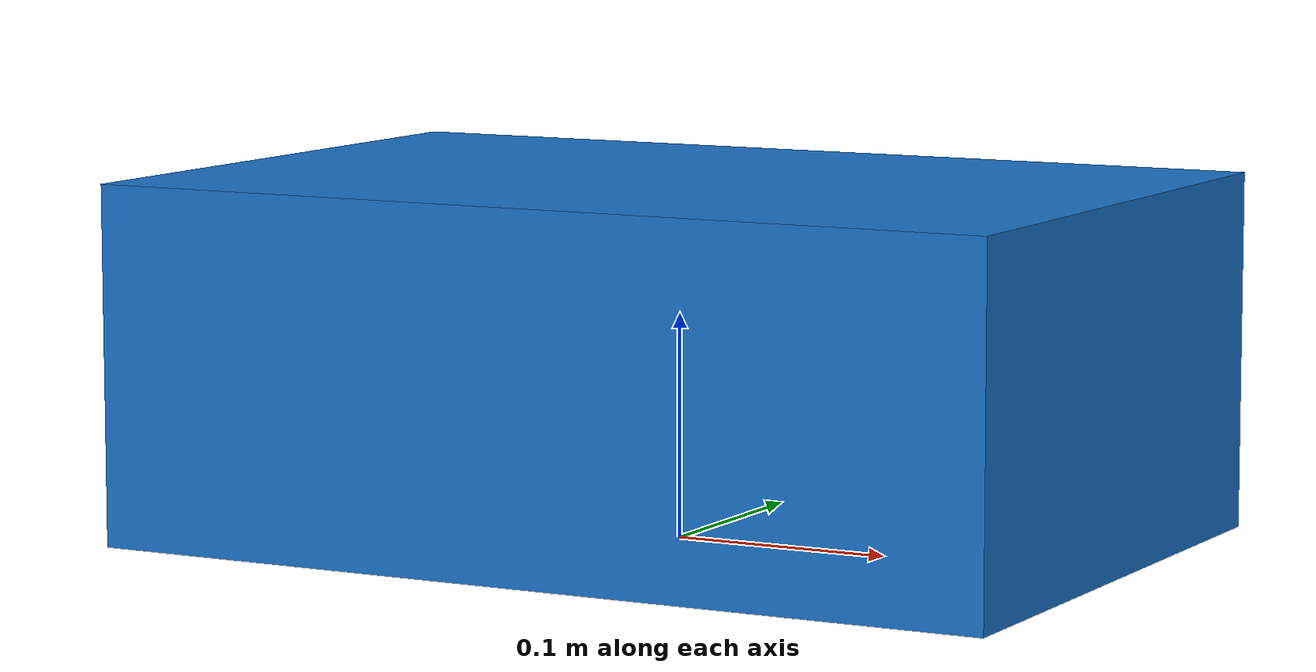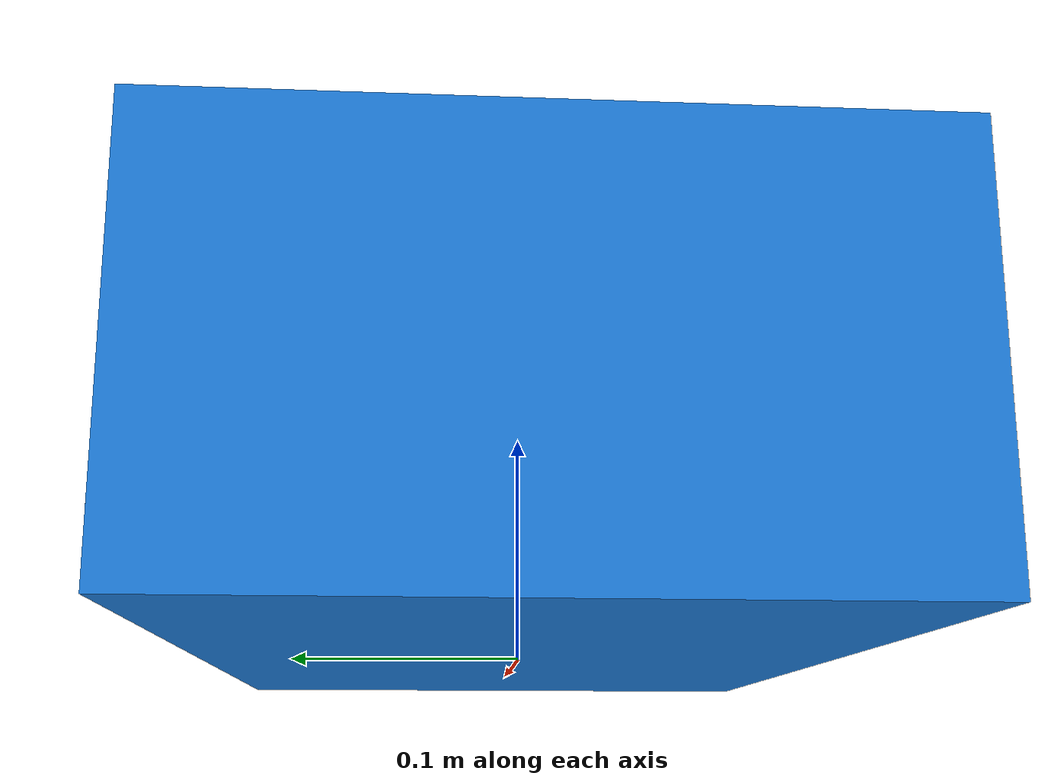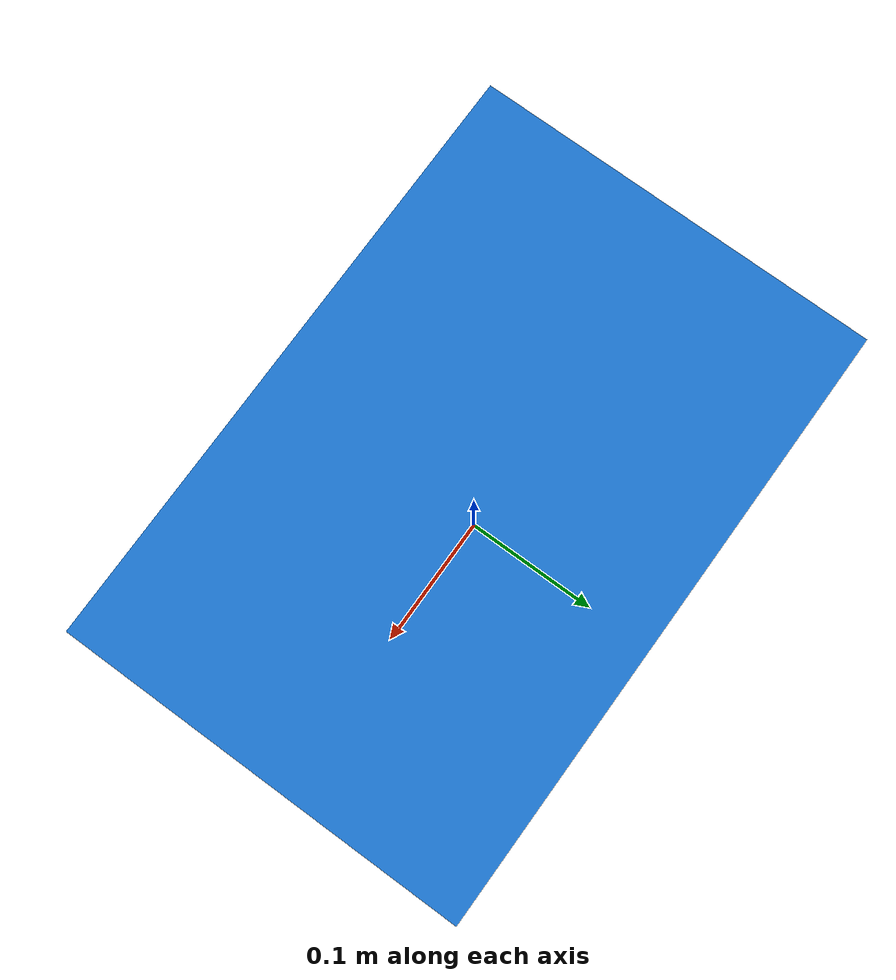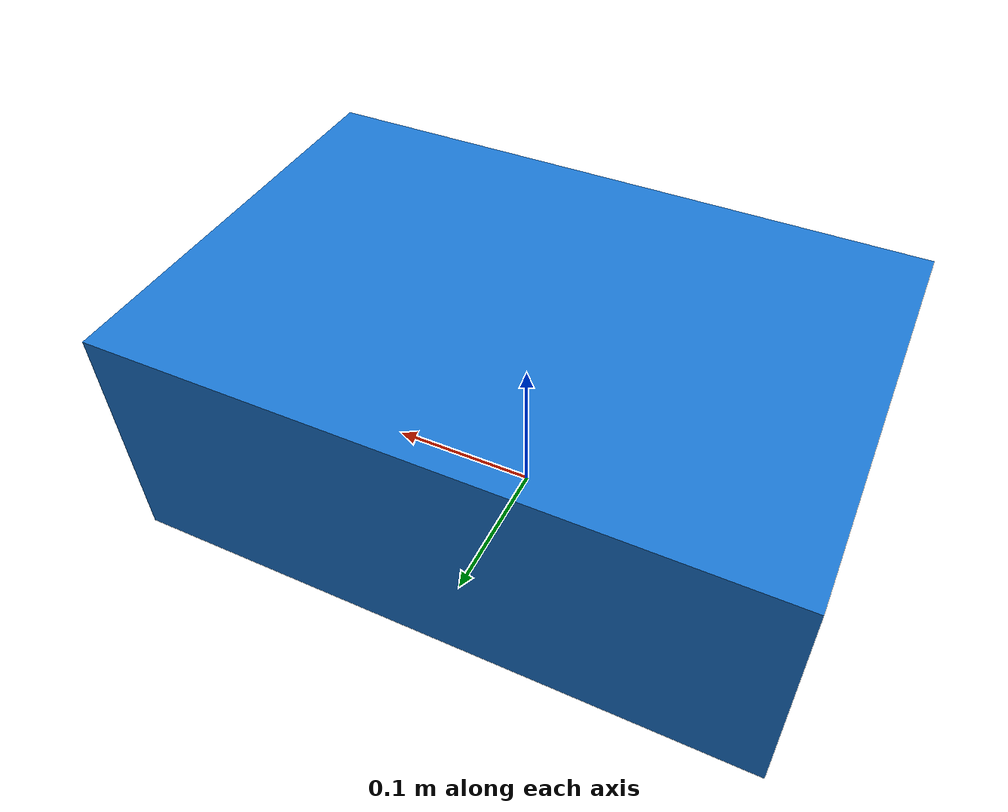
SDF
<?xml version="1.0" ?>
<sdf version="1.9">
  <model name="simple_ugv">
    <pose>0 0 0.08 0 0 0</pose>
    <link name="base_link">
      <inertial><mass>3.0</mass></inertial>
      <collision name="body_collision">
        <geometry><box><size>0.42 0.28 0.16</size></box></geometry>
      </collision>
      <visual name="body_visual">
        <geometry><box><size>0.42 0.28 0.16</size></box></geometry>
        <material><ambient>0.1 0.45 0.8 1</ambient><diffuse>0.1 0.45 0.8 1</diffuse></material>
      </visual>
    </link>
  </model>
</sdf>
